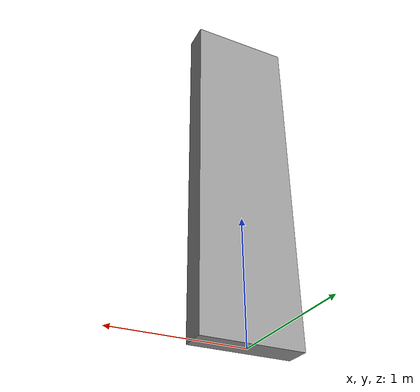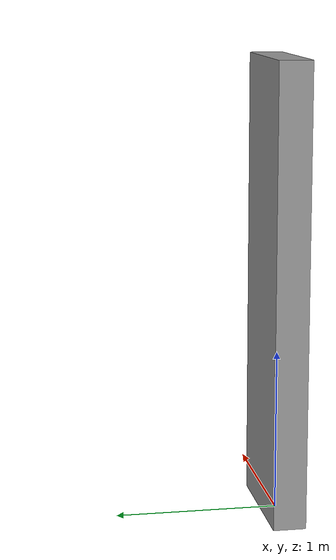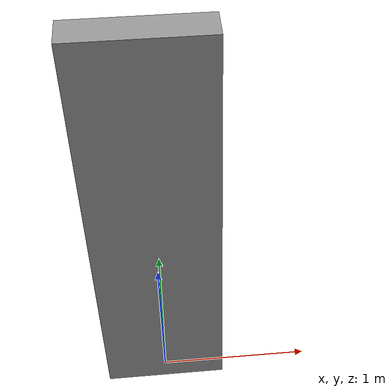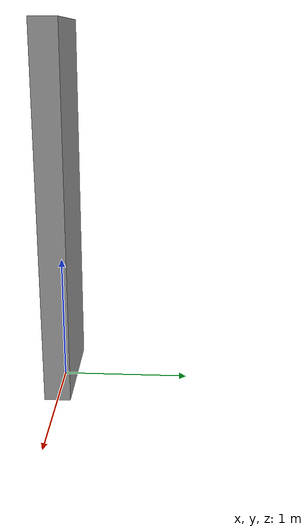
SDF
<?xml version="1.0" ?>
<sdf version="1.3">
  <model name="grey_wall_micro">
    <static>true</static>
    <link name="link">
      <pose>0 0 1.4 0 0 0</pose>
      <collision name="collision">
        <geometry>
          <box>
            <size>0.8 0.2 2.8</size>
          </box>
        </geometry>
      </collision>
      <visual name="visual">
        <cast_shadows>false</cast_shadows>
        <geometry>
          <box>
            <size>0.8 0.2 2.8</size>
          </box>
        </geometry>
        <material>
          <script>
            <uri>model://grey_wall_micro/materials/scripts</uri>
            <uri>model://grey_wall_micro/materials/textures</uri>
            <name>vrc/grey_wall_micro</name>
          </script>
        </material>
      </visual>
    </link>
  </model>
</sdf>
